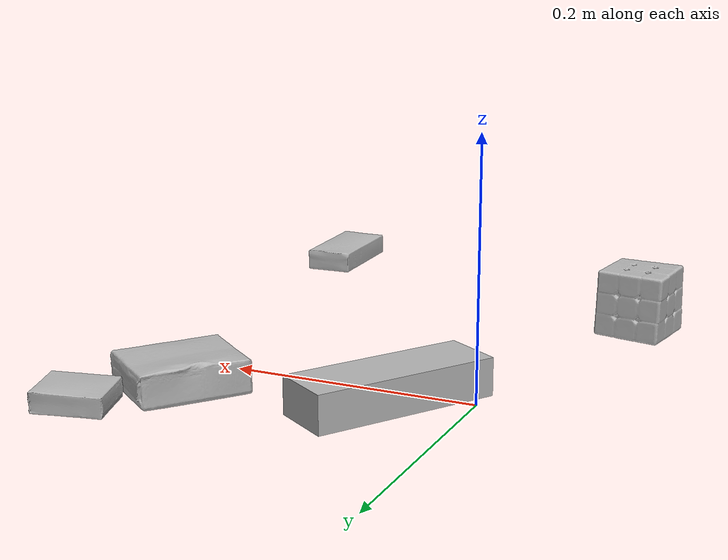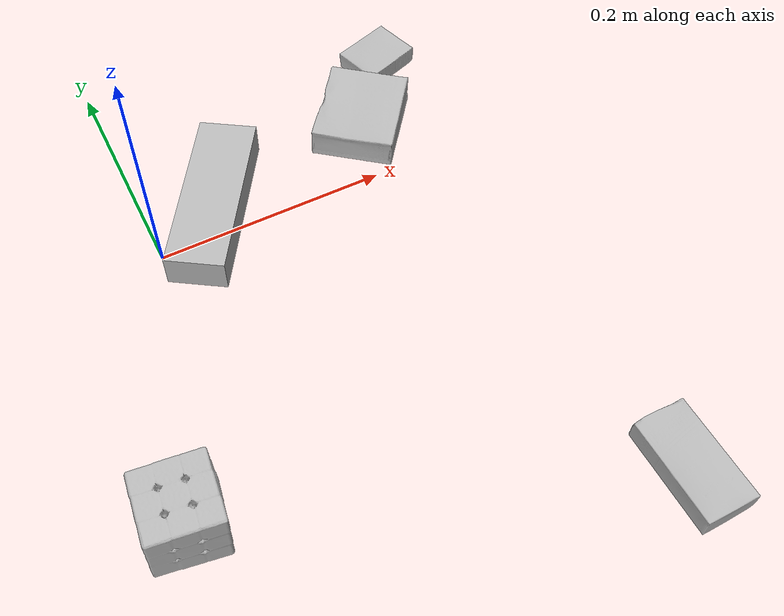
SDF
<sdf version="1.4">
  <world name="default">
    <light name="light1" type="point">
      <pose>0 0 1 0 0 0</pose>
      <diffuse>3 3 3 1</diffuse>
      <specular>3 3 3 1</specular>
    </light>
    <light name="light2" type="point">
      <pose>0 0.5 2 0 0 0</pose>
      <diffuse>1 1 1 1</diffuse>
      <specular>1 1 1 1</specular>
    </light>
    <light name="light3" type="point">
      <pose>0 0.5 2 0 0 0</pose>
      <diffuse>3 3 3 1</diffuse>
      <specular>3 3 3 1</specular>
    </light>
    <scene>
      <ambient>0.7 0.7 0.7</ambient>
    </scene>
    <model name="box1">
      <link name="link_box1">
        <collision name="default">
          <geometry>
            <mesh>
              <uri>model://sugar_box/collision_meshes/collision.obj</uri>
              <scale>0.5 0.5 0.5</scale>
            </mesh>
          </geometry>
          <surface>
            <friction>
              <ode>
                <mu>0.5</mu>
                <mu2>0.5</mu2>
              </ode>
            </friction>
          <contact>
        <ode>
            <max_vel>0</max_vel>
            <min_depth>0.0001</min_depth>
            <kp>1e8</kp>
        </ode>
    </contact></surface>
        </collision>
        <visual name="default">
          <geometry>
            <mesh>
              <uri>model://sugar_box/visual_meshes/visual.dae</uri>
              <scale>0.5 0.5 0.5</scale>
            </mesh>
          </geometry>
        </visual>
        <inertial>
          <mass>0.06211651861667633</mass>
          <pose>0.0005171863595023751 1.9245546354795806e-05 -0.00018182402709499002 -0.00040462630054681676 0.0010506634057476226 0.0026153787889456807</pose>
          <inertia>
            <ixx>1.2938825e-05</ixx>
            <iyy>4.1820942e-05</iyy>
            <izz>5.0064667e-05</izz>
            <ixy>0</ixy>
            <ixz>0</ixz>
            <iyz>0</iyz>
          </inertia>
        </inertial>
      </link>
      <pose>0.2749865651130676 -0.3496604561805725 0.011399304494261742 0.0007752417042897686 -0.02343245596565793 -1.5687270746946498</pose>
    </model>
    <model name="box2">
      <link name="link_box2">
        <collision name="default">
          <geometry>
            <mesh>
              <uri>model://rubiks_cube/collision_meshes/collision.obj</uri>
              <scale>1.0 1.0 1.0</scale>
            </mesh>
          </geometry>
          <surface>
            <friction>
              <ode>
                <mu>0.5</mu>
                <mu2>0.5</mu2>
              </ode>
            </friction>
          <contact>
        <ode>
            <max_vel>0</max_vel>
            <min_depth>0.0001</min_depth>
            <kp>1e8</kp>
        </ode>
    </contact></surface>
        </collision>
        <visual name="default">
          <geometry>
            <mesh>
              <uri>model://rubiks_cube/visual_meshes/visual.dae</uri>
              <scale>1.0 1.0 1.0</scale>
            </mesh>
          </geometry>
        </visual>
        <inertial>
          <mass>0.2700360119342804</mass>
          <pose>2.6721041649580002e-05 5.256967051536776e-05 -7.264316536748083e-06 -0.05467324422766238 -0.0981422115654675 -0.034454566623261795</pose>
          <inertia>
            <ixx>0.00014921304</ixx>
            <iyy>0.00014851718</iyy>
            <izz>0.00015044949</izz>
            <ixy>0</ixy>
            <ixz>0</ixz>
            <iyz>0</iyz>
          </inertia>
        </inertial>
      </link>
      <pose>-0.06517896801233292 -0.22690266370773315 0.028679002076387405 -1.9678493004328424e-06 4.67638102483956e-07 -1.7013386809936526</pose>
    </model>
    <model name="box3">
      <link name="link_box3">
        <collision name="default">
          <geometry>
            <mesh>
              <uri>model://jenga/collision_meshes/collision.obj</uri>
              <scale>1.0 1.0 1.0</scale>
            </mesh>
          </geometry>
          <surface>
            <friction>
              <ode>
                <mu>0.5</mu>
                <mu2>0.5</mu2>
              </ode>
            </friction>
          <contact>
        <ode>
            <max_vel>0</max_vel>
            <min_depth>0.0001</min_depth>
            <kp>1e8</kp>
        </ode>
    </contact></surface>
        </collision>
        <visual name="default">
          <geometry>
            <mesh>
              <uri>model://jenga/visual_meshes/visual.dae</uri>
              <scale>1.0 1.0 1.0</scale>
            </mesh>
          </geometry>
        </visual>
        <inertial>
          <mass>0.12586519122123718</mass>
          <pose>-2.502855807051674e-07 -0.00010250010382151231 -4.0923401684267446e-05 0.0 -7.342154049184251e-07 0.0</pose>
          <inertia>
            <ixx>3.482995e-05</ixx>
            <iyy>0.0002360068</iyy>
            <izz>0.00025195733</izz>
            <ixy>0</ixy>
            <ixz>0</ixz>
            <iyz>0</iyz>
          </inertia>
        </inertial>
      </link>
      <pose>0.05777784436941147 0.025366052985191345 0.014999995008111 5.415233257340121e-09 -1.5274783362105477e-09 0.9971454685044306</pose>
    </model>
    <model name="box4">
      <link name="link_box4">
        <collision name="default">
          <geometry>
            <mesh>
              <uri>model://gelatin_box/collision_meshes/collision.obj</uri>
              <scale>1.0 1.0 1.0</scale>
            </mesh>
          </geometry>
          <surface>
            <friction>
              <ode>
                <mu>0.5</mu>
                <mu2>0.5</mu2>
              </ode>
            </friction>
          <contact>
        <ode>
            <max_vel>0</max_vel>
            <min_depth>0.0001</min_depth>
            <kp>1e8</kp>
        </ode>
    </contact></surface>
        </collision>
        <visual name="default">
          <geometry>
            <mesh>
              <uri>model://gelatin_box/visual_meshes/visual.dae</uri>
              <scale>1.0 1.0 1.0</scale>
            </mesh>
          </geometry>
        </visual>
        <inertial>
          <mass>0.0925464928150177</mass>
          <pose>0.0004319618456065655 0.00011156871914863586 -0.0003640321083366871 -0.0010503719798216618 -0.004755819622564704 0.01644055760929568</pose>
          <inertia>
            <ixx>6.533027e-05</ixx>
            <iyy>4.6665074e-05</iyy>
            <izz>9.9447236e-05</izz>
            <ixy>0</ixy>
            <ixz>0</ixz>
            <iyz>0</iyz>
          </inertia>
        </inertial>
      </link>
      <pose>0.21496079862117767 0.05977225676178932 0.015168314799666405 0.005596583139487462 -0.00730361347595104 2.4680231292285337</pose>
    </model>
    <model name="box5">
      <link name="link_box5">
        <collision name="default">
          <geometry>
            <mesh>
              <uri>model://pudding_box/collision_meshes/collision.obj</uri>
              <scale>0.5 0.5 0.5</scale>
            </mesh>
          </geometry>
          <surface>
            <friction>
              <ode>
                <mu>0.5</mu>
                <mu2>0.5</mu2>
              </ode>
            </friction>
          <contact>
        <ode>
            <max_vel>0</max_vel>
            <min_depth>0.0001</min_depth>
            <kp>1e8</kp>
        </ode>
    </contact></surface>
        </collision>
        <visual name="default">
          <geometry>
            <mesh>
              <uri>model://pudding_box/visual_meshes/visual.dae</uri>
              <scale>0.5 0.5 0.5</scale>
            </mesh>
          </geometry>
        </visual>
        <inertial>
          <mass>0.0266704261302948</mass>
          <pose>0.00024474109522998333 0.00040339428232982755 -0.0002594413817860186 0.005213101812636465 -0.006603797316727521 0.020079823300208206</pose>
          <inertia>
            <ixx>7.5373864e-06</ixx>
            <iyy>5.0712065e-06</iyy>
            <izz>1.113092e-05</izz>
            <ixy>0</ixy>
            <ixz>0</ixz>
            <iyz>0</iyz>
          </inertia>
        </inertial>
      </link>
      <pose>0.26311302185058594 0.1237848624587059 0.009862901642918587 0.02234864625015495 -0.011391609869830958 -1.2874911800354056</pose>
    </model>
  <physics type="ode">
      <max_contacts>50</max_contacts>
      <ode>
        <solver>
          <type>quick</type>
          <iters>75</iters>
        </solver>
        <constraints>
          <contact_max_correcting_vel>0</contact_max_correcting_vel>
          <contact_surface_layer>0</contact_surface_layer>
        </constraints>
      </ode>
    </physics></world>
</sdf>
